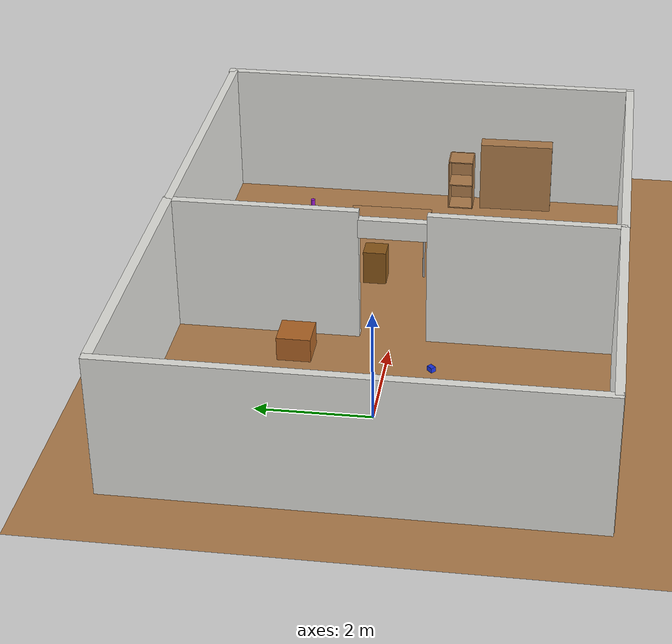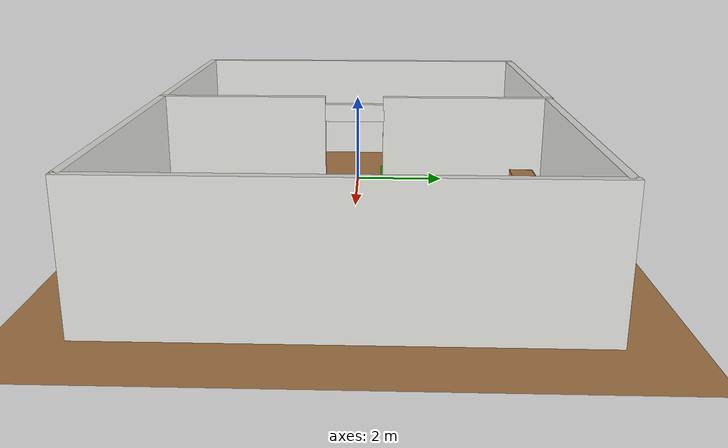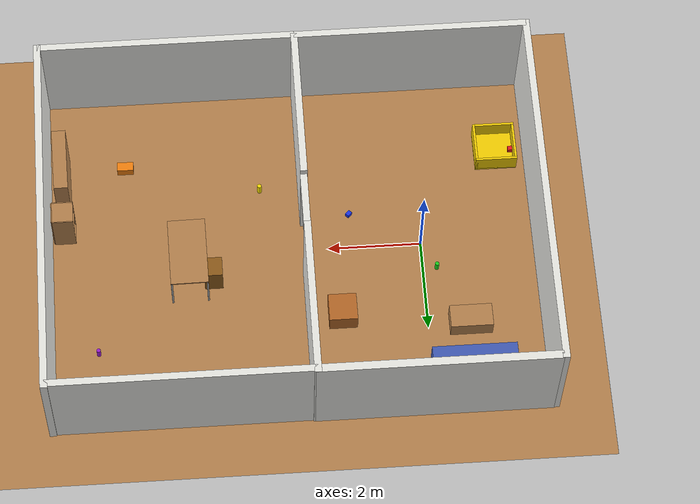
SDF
<sdf version="1.7">
 <world name="tidybot_home">
  <physics name="default_physics" default="1" type="ode">
   <ode>
    <solver>
     <type>quick</type>
     <iters>50</iters>
     <sor>1.4</sor>
     <use_dynamic_moi_rescaling>0</use_dynamic_moi_rescaling>
    </solver>
    <constraints>
     <cfm>0</cfm>
     <erp>0.2</erp>
     <contact_max_correcting_vel>100</contact_max_correcting_vel>
     <contact_surface_layer>0.001</contact_surface_layer>
    </constraints>
   </ode>
   <max_step_size>0.001</max_step_size>
   <real_time_factor>1</real_time_factor>
   <real_time_update_rate>1000</real_time_update_rate>
   <gravity>0 0 -9.81</gravity>
  </physics>
  <light name="sun" type="directional">
   <pose>0 0 10 0 -0 0</pose>
   <diffuse>0.9 0.9 0.9 1</diffuse>
   <specular>0.3 0.3 0.3 1</specular>
   <direction>-0.5 0.1 -0.9</direction>
   <attenuation><range>10</range></attenuation>
   <spot><inner_angle>0</inner_angle><outer_angle>0</outer_angle><falloff>0</falloff></spot>
  </light>
  <scene><ambient>0.35 0.35 0.35 1</ambient><background>0.5 0.5 0.5 1</background><shadows>1</shadows></scene>
  <model name="ground_plane">
   <static>1</static>
   <link name="link">
    <collision name="collision">
     <geometry><plane><normal>0 0 1</normal><size>25 25</size></plane></geometry>
     <surface>
      <friction><ode><mu>0.8</mu><mu2>0.8</mu2></ode></friction>
      <contact><ode><kp>1e+06</kp><kd>100</kd></ode></contact>
     </surface>
    </collision>
    <visual name="visual">
     <geometry><plane><normal>0 0 1</normal><size>25 25</size></plane></geometry>
     <material>
      <script><uri>file://media/materials/scripts/gazebo.material</uri><name>Gazebo/Wood</name></script>
     </material>
    </visual>
   </link>
  </model>
  <model name="wall_room1_west">
   <static>1</static>
   <pose>-2.5 0 1.25 0 -0 0</pose>
   <link name="link">
    <collision name="col"><geometry><box><size>0.15 7.98854 2.5</size></box></geometry></collision>
    <visual name="vis">
     <geometry><box><size>0.15 7.98854 2.5</size></box></geometry>
     <material><ambient>0.9 0.9 0.88 1</ambient><diffuse>0.9 0.9 0.88 1</diffuse></material>
    </visual>
   </link>
  </model>
  <model name="wall_room1_south">
   <static>1</static>
   <pose>-0 -3.92982 1.25 0 -0 0</pose>
   <link name="link">
    <collision name="col"><geometry><box><size>5 0.15 2.5</size></box></geometry></collision>
    <visual name="vis">
     <geometry><box><size>5 0.15 2.5</size></box></geometry>
     <material><ambient>0.9 0.9 0.88 1</ambient><diffuse>0.9 0.9 0.88 1</diffuse></material>
    </visual>
   </link>
  </model>
  <model name="wall_room1_north">
   <static>1</static>
   <pose>0.041998 3.91828 1.25 0 -0 0</pose>
   <link name="link">
    <collision name="col"><geometry><box><size>5 0.174165 2.5</size></box></geometry></collision>
    <visual name="vis">
     <geometry><box><size>5 0.174165 2.5</size></box></geometry>
     <material><ambient>0.9 0.9 0.88 1</ambient><diffuse>0.9 0.9 0.88 1</diffuse></material>
    </visual>
   </link>
  </model>
  <model name="wall_shared_south">
   <static>1</static>
   <pose>2.49433 -2.2794 1.25 0 -0 0</pose>
   <link name="link">
    <collision name="col"><geometry><box><size>0.15 3.36474 2.5</size></box></geometry></collision>
    <visual name="vis">
     <geometry><box><size>0.15 3.36474 2.5</size></box></geometry>
     <material><ambient>0.9 0.9 0.88 1</ambient><diffuse>0.9 0.9 0.88 1</diffuse></material>
    </visual>
   </link>
  </model>
  <model name="wall_shared_north">
   <static>1</static>
   <pose>2.5 2.29046 1.25 0 -0 0</pose>
   <link name="link">
    <collision name="col"><geometry><box><size>0.15 3.41909 2.5</size></box></geometry></collision>
    <visual name="vis">
     <geometry><box><size>0.15 3.41909 2.5</size></box></geometry>
     <material><ambient>0.9 0.9 0.88 1</ambient><diffuse>0.9 0.9 0.88 1</diffuse></material>
    </visual>
   </link>
  </model>
  <model name="wall_shared_lintel">
   <static>1</static>
   <pose>2.5 0 2.175 0 -0 0</pose>
   <link name="link">
    <collision name="col"><geometry><box><size>0.15 1.2 0.35</size></box></geometry></collision>
    <visual name="vis">
     <geometry><box><size>0.15 1.2 0.35</size></box></geometry>
     <material><ambient>0.9 0.9 0.88 1</ambient><diffuse>0.9 0.9 0.88 1</diffuse></material>
    </visual>
   </link>
  </model>
  <model name="wall_room2_east">
   <static>1</static>
   <pose>8 0 1.25 0 -0 0</pose>
   <link name="link">
    <collision name="col"><geometry><box><size>0.15 8.00718 2.5</size></box></geometry></collision>
    <visual name="vis">
     <geometry><box><size>0.15 8.00718 2.5</size></box></geometry>
     <material><ambient>0.9 0.9 0.88 1</ambient><diffuse>0.9 0.9 0.88 1</diffuse></material>
    </visual>
   </link>
  </model>
  <model name="wall_room2_south">
   <static>1</static>
   <pose>5.25 -3.93485 1.25 0 -0 0</pose>
   <link name="link">
    <collision name="col"><geometry><box><size>5.5 0.15 2.5</size></box></geometry></collision>
    <visual name="vis">
     <geometry><box><size>5.5 0.15 2.5</size></box></geometry>
     <material><ambient>0.9 0.9 0.88 1</ambient><diffuse>0.9 0.9 0.88 1</diffuse></material>
    </visual>
   </link>
  </model>
  <model name="wall_room2_north">
   <static>1</static>
   <pose>5.25 3.90574 1.25 0 -0 0</pose>
   <link name="link">
    <collision name="col"><geometry><box><size>5.5 0.15 2.5</size></box></geometry></collision>
    <visual name="vis">
     <geometry><box><size>5.5 0.15 2.5</size></box></geometry>
     <material><ambient>0.9 0.9 0.88 1</ambient><diffuse>0.9 0.9 0.88 1</diffuse></material>
    </visual>
   </link>
  </model>
  <model name="couch_seat">
   <static>1</static>
   <pose>-0.9 2.98228 0.225 0 -0 0</pose>
   <link name="link">
    <collision name="col"><geometry><box><size>1.8 0.65 0.45</size></box></geometry></collision>
    <visual name="vis">
     <geometry><box><size>1.8 0.65 0.45</size></box></geometry>
     <material><ambient>0.25 0.35 0.7 1</ambient><diffuse>0.25 0.35 0.7 1</diffuse></material>
    </visual>
   </link>
  </model>
  <model name="couch_back">
   <static>1</static>
   <pose>-0.9 3.2517 0.625 0 -0 0</pose>
   <link name="link">
    <collision name="col"><geometry><box><size>1.8 0.1 0.45</size></box></geometry></collision>
    <visual name="vis">
     <geometry><box><size>1.8 0.1 0.45</size></box></geometry>
     <material><ambient>0.2 0.28 0.6 1</ambient><diffuse>0.2 0.28 0.6 1</diffuse></material>
    </visual>
   </link>
  </model>
  <model name="coffee_table">
   <static>1</static>
   <pose>-0.9 1.94982 0.2 0 -0 0</pose>
   <link name="link">
    <collision name="col"><geometry><box><size>0.9 0.5 0.4</size></box></geometry></collision>
    <visual name="vis">
     <geometry><box><size>0.9 0.5 0.4</size></box></geometry>
     <material>
      <script><uri>file://media/materials/scripts/gazebo.material</uri><name>Gazebo/Wood</name></script>
     </material>
    </visual>
   </link>
  </model>
  <model name="armchair">
   <static>1</static>
   <pose>1.8 1.6 0.22 0 0 -1.57</pose>
   <link name="link">
    <collision name="col"><geometry><box><size>0.6 0.6 0.44</size></box></geometry></collision>
    <visual name="vis">
     <geometry><box><size>0.6 0.6 0.44</size></box></geometry>
     <material><ambient>0.7 0.4 0.15 1</ambient><diffuse>0.7 0.4 0.15 1</diffuse></material>
    </visual>
   </link>
  </model>
  <model name="dining_chair_1">
   <static>1</static>
   <pose>4.49508 0.578269 0.213361 0 -0 0</pose>
   <link name="link">
    <collision name="col"><geometry><box><size>0.385712 0.423352 0.836295</size></box></geometry></collision>
    <visual name="vis">
     <geometry><box><size>0.385712 0.423352 0.836295</size></box></geometry>
     <material><ambient>0.55 0.35 0.1 1</ambient><diffuse>0.55 0.35 0.1 1</diffuse></material>
    </visual>
   </link>
  </model>
  <model name="shelf_unit">
   <static>1</static>
   <pose>7.65 -1.8 0.7 0 -0 -3.12327</pose>
   <link name="link">
    <collision name="col"><geometry><box><size>0.3 1.4 1.4</size></box></geometry></collision>
    <visual name="vis">
     <geometry><box><size>0.3 1.4 1.4</size></box></geometry>
     <material>
      <script><uri>file://media/materials/scripts/gazebo.material</uri><name>Gazebo/Wood</name></script>
     </material>
    </visual>
   </link>
  </model>
  <model name="pickup_block_1">
   <pose>-2.14997 -2.16394 0.099986 0.000287 -0 0</pose>
   <link name="link">
    <inertial>
     <mass>0.15</mass>
     <inertia>
      <ixx>6.25e-05</ixx>
      <ixy>0</ixy>
      <ixz>0</ixz>
      <iyy>6.25e-05</iyy>
      <iyz>0</iyz>
      <izz>6.25e-05</izz>
     </inertia>
    </inertial>
    <collision name="col">
     <geometry><box><size>0.1 0.1 0.1</size></box></geometry>
     <surface><friction><ode><mu>0.5</mu><mu2>0.5</mu2></ode></friction></surface>
    </collision>
    <visual name="vis">
     <geometry><box><size>0.1 0.1 0.1</size></box></geometry>
     <material><ambient>0.9 0.1 0.1 1</ambient><diffuse>0.9 0.1 0.1 1</diffuse></material>
    </visual>
   </link>
  </model>
  <model name="pickup_can_1">
   <pose>-0.299975 0.599984 0.107972 0 1e-06 -0.000794</pose>
   <link name="link">
    <inertial>
     <mass>0.15</mass>
     <inertia><ixx>7e-05</ixx><ixy>0</ixy><ixz>0</ixz><iyy>7e-05</iyy><iyz>0</iyz><izz>3.75e-05</izz></inertia>
    </inertial>
    <collision name="col">
     <geometry><cylinder><radius>0.0442891</radius><length>0.215945</length></cylinder></geometry>
     <surface><friction><ode><mu>0.5</mu><mu2>0.5</mu2></ode></friction></surface>
    </collision>
    <visual name="vis">
     <geometry><cylinder><radius>0.0442891</radius><length>0.215945</length></cylinder></geometry>
     <material><ambient>0.1 0.8 0.1 1</ambient><diffuse>0.1 0.8 0.1 1</diffuse></material>
    </visual>
   </link>
  </model>
  <model name="pickup_block_2">
   <pose>1.5 -0.8 0.045 0 -0 0.8</pose>
   <link name="link">
    <inertial>
     <mass>0.15</mass>
     <inertia><ixx>4.4e-05</ixx><ixy>0</ixy><ixz>0</ixz><iyy>5.8e-05</iyy><iyz>0</iyz><izz>6.25e-05</izz></inertia>
    </inertial>
    <collision name="col">
     <geometry><box><size>0.12 0.09 0.09</size></box></geometry>
     <surface><friction><ode><mu>0.5</mu><mu2>0.5</mu2></ode></friction></surface>
    </collision>
    <visual name="vis">
     <geometry><box><size>0.12 0.09 0.09</size></box></geometry>
     <material><ambient>0.1 0.2 0.9 1</ambient><diffuse>0.1 0.2 0.9 1</diffuse></material>
    </visual>
   </link>
  </model>
  <model name="pickup_can_2">
   <pose>3.40001 -1.50002 0.128601 -0 1e-06 -9.9e-05</pose>
   <link name="link">
    <inertial>
     <mass>0.15</mass>
     <inertia><ixx>7e-05</ixx><ixy>0</ixy><ixz>0</ixz><iyy>7e-05</iyy><iyz>0</iyz><izz>3.75e-05</izz></inertia>
    </inertial>
    <collision name="col">
     <geometry><cylinder><radius>0.0450219</radius><length>0.257203</length></cylinder></geometry>
     <surface><friction><ode><mu>0.5</mu><mu2>0.5</mu2></ode></friction></surface>
    </collision>
    <visual name="vis">
     <geometry><cylinder><radius>0.0450219</radius><length>0.257203</length></cylinder></geometry>
     <material><ambient>0.95 0.85 0 1</ambient><diffuse>0.95 0.85 0 1</diffuse></material>
    </visual>
   </link>
  </model>
  <model name="pickup_block_3">
   <pose>6.29987 -2.19995 0.099995 2.6e-05 1e-06 1.5626</pose>
   <link name="link">
    <inertial>
     <mass>0.15</mass>
     <inertia>
      <ixx>6.25e-05</ixx>
      <ixy>0</ixy>
      <ixz>0</ixz>
      <iyy>6.25e-05</iyy>
      <iyz>0</iyz>
      <izz>6.25e-05</izz>
     </inertia>
    </inertial>
    <collision name="col">
     <geometry><box><size>0.2 0.347297 0.2</size></box></geometry>
     <surface><friction><ode><mu>0.5</mu><mu2>0.5</mu2></ode></friction></surface>
    </collision>
    <visual name="vis">
     <geometry><box><size>0.2 0.347297 0.2</size></box></geometry>
     <material><ambient>0.95 0.5 0.05 1</ambient><diffuse>0.95 0.5 0.05 1</diffuse></material>
    </visual>
   </link>
  </model>
  <model name="pickup_can_3">
   <pose>7 2.2 0.11 -0 1e-06 -0.002898</pose>
   <link name="link">
    <inertial>
     <mass>0.15</mass>
     <inertia><ixx>7e-05</ixx><ixy>0</ixy><ixz>0</ixz><iyy>7e-05</iyy><iyz>0</iyz><izz>3.75e-05</izz></inertia>
    </inertial>
    <collision name="col">
     <geometry><cylinder><radius>0.0424403</radius><length>0.22</length></cylinder></geometry>
     <surface><friction><ode><mu>0.5</mu><mu2>0.5</mu2></ode></friction></surface>
    </collision>
    <visual name="vis">
     <geometry><cylinder><radius>0.0424403</radius><length>0.22</length></cylinder></geometry>
     <material><ambient>0.6 0.1 0.8 1</ambient><diffuse>0.6 0.1 0.8 1</diffuse></material>
    </visual>
   </link>
  </model>
  <model name="collection_box_floor">
   <static>1</static>
   <pose>-1.8 -2.2 0.025 0 -0 0</pose>
   <link name="link">
    <collision name="col"><geometry><box><size>0.9 0.9 0.05</size></box></geometry></collision>
    <visual name="vis">
     <geometry><box><size>0.9 0.9 0.05</size></box></geometry>
     <material><ambient>0.95 0.8 0 1</ambient><diffuse>0.95 0.8 0 1</diffuse></material>
    </visual>
   </link>
  </model>
  <model name="collection_box_north">
   <static>1</static>
   <pose>-1.8 -1.775 0.225 0 -0 0</pose>
   <link name="link">
    <collision name="col"><geometry><box><size>0.9 0.05 0.4</size></box></geometry></collision>
    <visual name="vis">
     <geometry><box><size>0.9 0.05 0.4</size></box></geometry>
     <material><ambient>0.95 0.8 0 1</ambient><diffuse>0.95 0.8 0 1</diffuse></material>
    </visual>
   </link>
  </model>
  <model name="collection_box_south">
   <static>1</static>
   <pose>-1.8 -2.625 0.225 0 -0 0</pose>
   <link name="link">
    <collision name="col"><geometry><box><size>0.9 0.05 0.4</size></box></geometry></collision>
    <visual name="vis">
     <geometry><box><size>0.9 0.05 0.4</size></box></geometry>
     <material><ambient>0.95 0.8 0 1</ambient><diffuse>0.95 0.8 0 1</diffuse></material>
    </visual>
   </link>
  </model>
  <model name="collection_box_east">
   <static>1</static>
   <pose>-1.375 -2.2 0.225 0 -0 0</pose>
   <link name="link">
    <collision name="col"><geometry><box><size>0.05 0.9 0.4</size></box></geometry></collision>
    <visual name="vis">
     <geometry><box><size>0.05 0.9 0.4</size></box></geometry>
     <material><ambient>0.95 0.8 0 1</ambient><diffuse>0.95 0.8 0 1</diffuse></material>
    </visual>
   </link>
  </model>
  <model name="collection_box_west">
   <static>1</static>
   <pose>-2.225 -2.2 0.225 0 -0 0</pose>
   <link name="link">
    <collision name="col"><geometry><box><size>0.05 0.9 0.4</size></box></geometry></collision>
    <visual name="vis">
     <geometry><box><size>0.05 0.9 0.4</size></box></geometry>
     <material><ambient>0.95 0.8 0 1</ambient><diffuse>0.95 0.8 0 1</diffuse></material>
    </visual>
   </link>
  </model>
  <gravity>0 0 -9.8</gravity>
  <magnetic_field>6e-06 2.3e-05 -4.2e-05</magnetic_field>
  <atmosphere type="adiabatic"/>
  <audio><device>default</device></audio>
  <spherical_coordinates>
   <surface_model>EARTH_WGS84</surface_model>
   <latitude_deg>0</latitude_deg>
   <longitude_deg>0</longitude_deg>
   <elevation>0</elevation>
   <heading_deg>0</heading_deg>
  </spherical_coordinates>
  <model name="table">
   <static>1</static>
   <link name="link">
    <collision name="surface">
     <pose>0 0 1 0 -0 0</pose>
     <geometry><box><size>1.5 0.8 0.03</size></box></geometry>
     <surface><friction><ode><mu>0.6</mu><mu2>0.6</mu2></ode></friction></surface>
    </collision>
    <visual name="visual1">
     <pose>0 0 1 0 -0 0</pose>
     <geometry><box><size>1.5 0.8 0.03</size></box></geometry>
     <material>
      <script><uri>file://media/materials/scripts/gazebo.material</uri><name>Gazebo/Wood</name></script>
     </material>
    </visual>
    <collision name="front_left_leg">
     <pose>0.68 0.38 0.5 0 -0 0</pose>
     <geometry><cylinder><radius>0.02</radius><length>1</length></cylinder></geometry>
    </collision>
    <visual name="front_left_leg">
     <pose>0.68 0.38 0.5 0 -0 0</pose>
     <geometry><cylinder><radius>0.02</radius><length>1</length></cylinder></geometry>
     <material>
      <script><uri>file://media/materials/scripts/gazebo.material</uri><name>Gazebo/Grey</name></script>
     </material>
    </visual>
    <collision name="front_right_leg">
     <pose>0.68 -0.38 0.5 0 -0 0</pose>
     <geometry><cylinder><radius>0.02</radius><length>1</length></cylinder></geometry>
    </collision>
    <visual name="front_right_leg">
     <pose>0.68 -0.38 0.5 0 -0 0</pose>
     <geometry><cylinder><radius>0.02</radius><length>1</length></cylinder></geometry>
     <material>
      <script><uri>file://media/materials/scripts/gazebo.material</uri><name>Gazebo/Grey</name></script>
     </material>
    </visual>
    <collision name="back_right_leg">
     <pose>-0.68 -0.38 0.5 0 -0 0</pose>
     <geometry><cylinder><radius>0.02</radius><length>1</length></cylinder></geometry>
    </collision>
    <visual name="back_right_leg">
     <pose>-0.68 -0.38 0.5 0 -0 0</pose>
     <geometry><cylinder><radius>0.02</radius><length>1</length></cylinder></geometry>
     <material>
      <script><uri>file://media/materials/scripts/gazebo.material</uri><name>Gazebo/Grey</name></script>
     </material>
    </visual>
    <collision name="back_left_leg">
     <pose>-0.68 0.38 0.5 0 -0 0</pose>
     <geometry><cylinder><radius>0.02</radius><length>1</length></cylinder></geometry>
    </collision>
    <visual name="back_left_leg">
     <pose>-0.68 0.38 0.5 0 -0 0</pose>
     <geometry><cylinder><radius>0.02</radius><length>1</length></cylinder></geometry>
     <material>
      <script><uri>file://media/materials/scripts/gazebo.material</uri><name>Gazebo/Grey</name></script>
     </material>
    </visual>
   </link>
   <pose>5.01215 0.379627 0 0 0 -1.5585</pose>
  </model>
  <model name="cabinet">
   <static>1</static>
   <link name="cabinet_bottom_plate">
    <inertial>
     <pose>0 0 -1 0 -0 0</pose>
     <inertia><ixx>2.05</ixx><ixy>0</ixy><ixz>0</ixz><iyy>2.05</iyy><iyz>0</iyz><izz>2.05</izz></inertia>
     <mass>25</mass>
    </inertial>
    <collision name="cabinet_bottom_plate_geom">
     <pose>0 0 0.01 0 -0 0</pose>
     <geometry><box><size>0.45 0.45 0.02</size></box></geometry>
    </collision>
    <visual name="cabinet_bottom_plate_geom_visual">
     <pose>0 0 0.01 0 -0 0</pose>
     <geometry><box><size>0.45 0.45 0.02</size></box></geometry>
     <material>
      <script><uri>file://media/materials/scripts/gazebo.material</uri><name>Gazebo/Wood</name></script>
     </material>
    </visual>
    <collision name="cabinet_bottom_plate_geom_cabinet_back_plate">
     <pose>0.235 0 0.51 0 -0 0</pose>
     <geometry><box><size>0.02 0.45 1.02</size></box></geometry>
    </collision>
    <visual name="cabinet_bottom_plate_geom_cabinet_back_plate_visual">
     <pose>0.235 0 0.51 0 -0 0</pose>
     <geometry><box><size>0.02 0.45 1.02</size></box></geometry>
     <material>
      <script><uri>file://media/materials/scripts/gazebo.material</uri><name>Gazebo/Wood</name></script>
     </material>
    </visual>
    <collision name="cabinet_bottom_plate_geom_cabinet_left_plate">
     <pose>0 0.235 0.51 0 -0 0</pose>
     <geometry><box><size>0.45 0.02 1.02</size></box></geometry>
    </collision>
    <visual name="cabinet_bottom_plate_geom_cabinet_left_plate_visual">
     <pose>0 0.235 0.51 0 -0 0</pose>
     <geometry><box><size>0.45 0.02 1.02</size></box></geometry>
     <material>
      <script><uri>file://media/materials/scripts/gazebo.material</uri><name>Gazebo/Wood</name></script>
     </material>
    </visual>
    <collision name="cabinet_bottom_plate_geom_cabinet_middle_plate">
     <pose>0 0 0.51 0 -0 0</pose>
     <geometry><box><size>0.45 0.45 0.02</size></box></geometry>
    </collision>
    <visual name="cabinet_bottom_plate_geom_cabinet_middle_plate_visual">
     <pose>0 0 0.51 0 -0 0</pose>
     <geometry><box><size>0.45 0.45 0.02</size></box></geometry>
     <material>
      <script><uri>file://media/materials/scripts/gazebo.material</uri><name>Gazebo/Wood</name></script>
     </material>
    </visual>
    <collision name="cabinet_bottom_plate_geom_cabinet_right_plate">
     <pose>0 -0.235 0.51 0 -0 0</pose>
     <geometry><box><size>0.45 0.02 1.02</size></box></geometry>
    </collision>
    <visual name="cabinet_bottom_plate_geom_cabinet_right_plate_visual">
     <pose>0 -0.235 0.51 0 -0 0</pose>
     <geometry><box><size>0.45 0.02 1.02</size></box></geometry>
     <material>
      <script><uri>file://media/materials/scripts/gazebo.material</uri><name>Gazebo/Wood</name></script>
     </material>
    </visual>
    <collision name="cabinet_bottom_plate_geom_cabinet_top_plate">
     <pose>0 0 1.01 0 -0 0</pose>
     <geometry><box><size>0.45 0.45 0.02</size></box></geometry>
    </collision>
    <visual name="cabinet_bottom_plate_geom_cabinet_top_plate_visual">
     <pose>0 0 1.01 0 -0 0</pose>
     <geometry><box><size>0.45 0.45 0.02</size></box></geometry>
     <material>
      <script><uri>file://media/materials/scripts/gazebo.material</uri><name>Gazebo/Wood</name></script>
     </material>
    </visual>
   </link>
   <pose>7.64538 -0.716825 0 0 -0 0</pose>
  </model>
  <model name="cabinet_clone">
   <static>1</static>
   <link name="cabinet_bottom_plate">
    <inertial>
     <pose>0 0 -1 0 -0 0</pose>
     <inertia><ixx>2.05</ixx><ixy>0</ixy><ixz>0</ixz><iyy>2.05</iyy><iyz>0</iyz><izz>2.05</izz></inertia>
     <mass>25</mass>
    </inertial>
    <collision name="cabinet_bottom_plate_geom">
     <pose>0 0 0.01 0 -0 0</pose>
     <geometry><box><size>0.45 0.45 0.02</size></box></geometry>
    </collision>
    <visual name="cabinet_bottom_plate_geom_visual">
     <pose>0 0 0.01 0 -0 0</pose>
     <geometry><box><size>0.45 0.45 0.02</size></box></geometry>
     <material>
      <script><uri>file://media/materials/scripts/gazebo.material</uri><name>Gazebo/Wood</name></script>
     </material>
    </visual>
    <collision name="cabinet_bottom_plate_geom_cabinet_back_plate">
     <pose>0.235 0 0.51 0 -0 0</pose>
     <geometry><box><size>0.02 0.45 1.02</size></box></geometry>
    </collision>
    <visual name="cabinet_bottom_plate_geom_cabinet_back_plate_visual">
     <pose>0.235 0 0.51 0 -0 0</pose>
     <geometry><box><size>0.02 0.45 1.02</size></box></geometry>
     <material>
      <script><uri>file://media/materials/scripts/gazebo.material</uri><name>Gazebo/Wood</name></script>
     </material>
    </visual>
    <collision name="cabinet_bottom_plate_geom_cabinet_left_plate">
     <pose>0 0.235 0.51 0 -0 0</pose>
     <geometry><box><size>0.45 0.02 1.02</size></box></geometry>
    </collision>
    <visual name="cabinet_bottom_plate_geom_cabinet_left_plate_visual">
     <pose>0 0.235 0.51 0 -0 0</pose>
     <geometry><box><size>0.45 0.02 1.02</size></box></geometry>
     <material>
      <script><uri>file://media/materials/scripts/gazebo.material</uri><name>Gazebo/Wood</name></script>
     </material>
    </visual>
    <collision name="cabinet_bottom_plate_geom_cabinet_middle_plate">
     <pose>0 0 0.51 0 -0 0</pose>
     <geometry><box><size>0.45 0.45 0.02</size></box></geometry>
    </collision>
    <visual name="cabinet_bottom_plate_geom_cabinet_middle_plate_visual">
     <pose>0 0 0.51 0 -0 0</pose>
     <geometry><box><size>0.45 0.45 0.02</size></box></geometry>
     <material>
      <script><uri>file://media/materials/scripts/gazebo.material</uri><name>Gazebo/Wood</name></script>
     </material>
    </visual>
    <collision name="cabinet_bottom_plate_geom_cabinet_right_plate">
     <pose>0 -0.235 0.51 0 -0 0</pose>
     <geometry><box><size>0.45 0.02 1.02</size></box></geometry>
    </collision>
    <visual name="cabinet_bottom_plate_geom_cabinet_right_plate_visual">
     <pose>0 -0.235 0.51 0 -0 0</pose>
     <geometry><box><size>0.45 0.02 1.02</size></box></geometry>
     <material>
      <script><uri>file://media/materials/scripts/gazebo.material</uri><name>Gazebo/Wood</name></script>
     </material>
    </visual>
    <collision name="cabinet_bottom_plate_geom_cabinet_top_plate">
     <pose>0 0 1.01 0 -0 0</pose>
     <geometry><box><size>0.45 0.45 0.02</size></box></geometry>
    </collision>
    <visual name="cabinet_bottom_plate_geom_cabinet_top_plate_visual">
     <pose>0 0 1.01 0 -0 0</pose>
     <geometry><box><size>0.45 0.45 0.02</size></box></geometry>
     <material>
      <script><uri>file://media/materials/scripts/gazebo.material</uri><name>Gazebo/Wood</name></script>
     </material>
    </visual>
   </link>
   <pose>2.84877 3.41195 0 0 -0 1.55161</pose>
  </model>
 </world>
</sdf>
